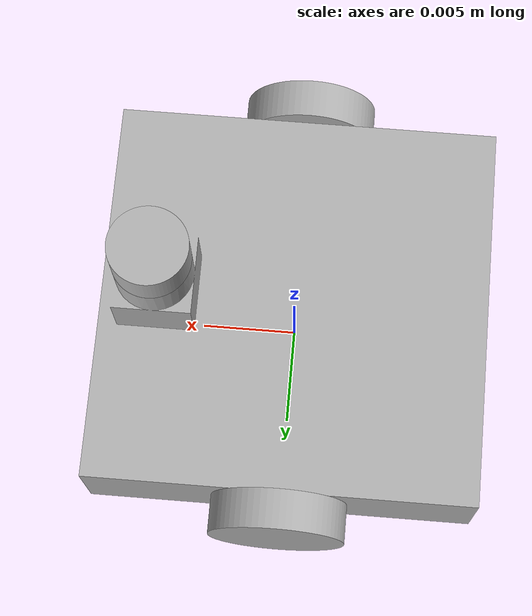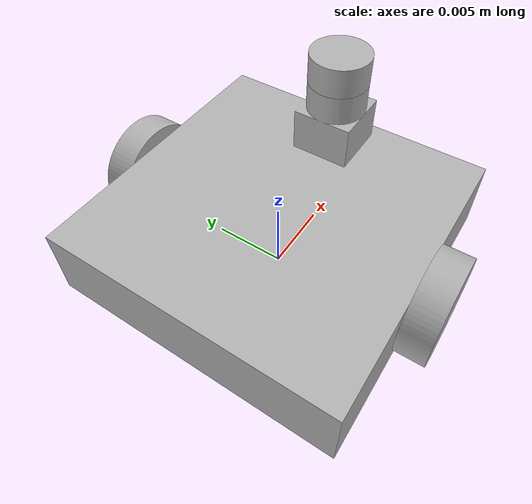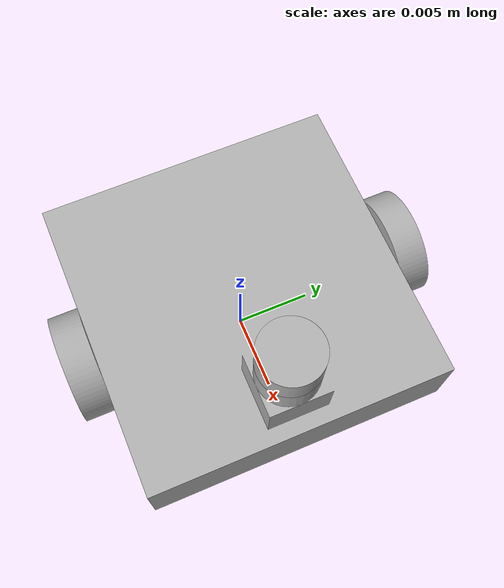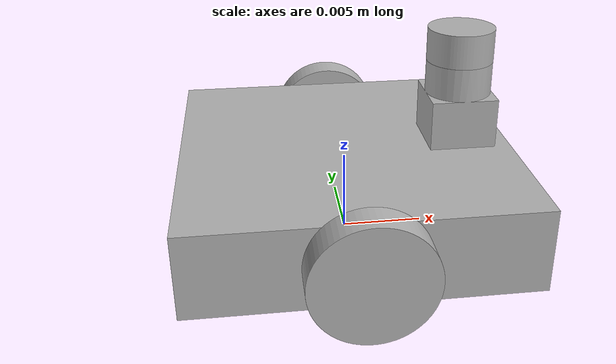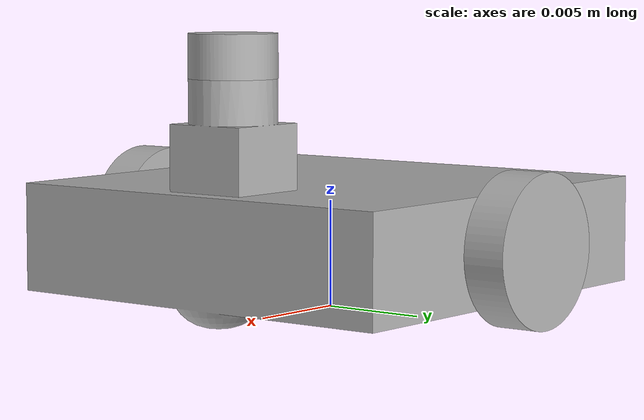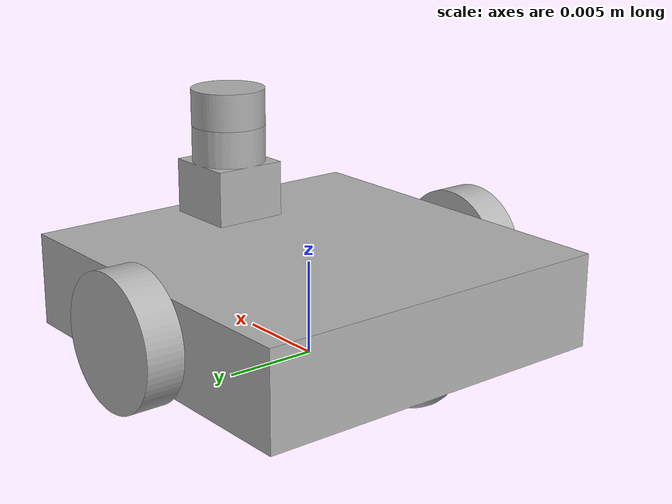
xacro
<?xml version="1.0" ?>
<robot name="trial" xmlns:xacro="http://www.ros.org/wiki/xacro">

<xacro:include filename="$(find trial_description)/urdf/materials.xacro" />
<xacro:include filename="$(find trial_description)/urdf/trial.trans" />
<xacro:include filename="$(find trial_description)/urdf/trial.gazebo" />
<link name="base_link">
  <inertial>
    <origin rpy="0 0 0" xyz="0.00024515429005832244 0.0 0.003649472912835996"/>
    <mass value="0.002213483451648013"/>
    <inertia ixx="0.0" ixy="0.0" ixz="-0.0" iyy="0.0" iyz="0.0" izz="0.0"/>
  </inertial>
  <visual>
    <origin rpy="0 0 0" xyz="0 0 0"/>
    <geometry>
      <mesh filename="package://trial_description/meshes/base_link.stl" scale="0.001 0.001 0.001"/>
    </geometry>
    <material name="silver"/>
  </visual>
  <collision>
    <origin rpy="0 0 0" xyz="0 0 0"/>
    <geometry>
      <mesh filename="package://trial_description/meshes/base_link.stl" scale="0.001 0.001 0.001"/>
    </geometry>
  </collision>
</link>

<link name="left_wheel_1">
  <inertial>
    <origin rpy="0 0 0" xyz="3.6598869835286766e-13 0.0010000000000000009 -8.673617379884035e-19"/>
    <mass value="7.158119226910766e-05"/>
    <inertia ixx="0.0" ixy="0.0" ixz="-0.0" iyy="0.0" iyz="0.0" izz="0.0"/>
  </inertial>
  <visual>
    <origin rpy="0 0 0" xyz="-0.0 -0.01 -0.0035"/>
    <geometry>
      <mesh filename="package://trial_description/meshes/left_wheel_1.stl" scale="0.001 0.001 0.001"/>
    </geometry>
    <material name="silver"/>
  </visual>
  <collision>
    <origin rpy="0 0 0" xyz="-0.0 -0.01 -0.0035"/>
    <geometry>
      <mesh filename="package://trial_description/meshes/left_wheel_1.stl" scale="0.001 0.001 0.001"/>
    </geometry>
  </collision>
</link>

<link name="right_wheel_1">
  <inertial>
    <origin rpy="0 0 0" xyz="3.6598869835286766e-13 -0.0010000000000000009 -8.673617379884035e-19"/>
    <mass value="7.158119226910766e-05"/>
    <inertia ixx="0.0" ixy="0.0" ixz="-0.0" iyy="0.0" iyz="-0.0" izz="0.0"/>
  </inertial>
  <visual>
    <origin rpy="0 0 0" xyz="-0.0 0.01 -0.0035"/>
    <geometry>
      <mesh filename="package://trial_description/meshes/right_wheel_1.stl" scale="0.001 0.001 0.001"/>
    </geometry>
    <material name="silver"/>
  </visual>
  <collision>
    <origin rpy="0 0 0" xyz="-0.0 0.01 -0.0035"/>
    <geometry>
      <mesh filename="package://trial_description/meshes/right_wheel_1.stl" scale="0.001 0.001 0.001"/>
    </geometry>
  </collision>
</link>

<link name="lidar_1">
  <inertial>
    <origin rpy="0 0 0" xyz="1.040989933143166e-10 3.4511225983891793e-19 0.0010000000000000026"/>
    <mass value="3.468318392927219e-05"/>
    <inertia ixx="0.0" ixy="0.0" ixz="0.0" iyy="0.0" iyz="-0.0" izz="0.0"/>
  </inertial>
  <visual>
    <origin rpy="0 0 0" xyz="-0.007 -0.0 -0.011"/>
    <geometry>
      <mesh filename="package://trial_description/meshes/lidar_1.stl" scale="0.001 0.001 0.001"/>
    </geometry>
    <material name="silver"/>
  </visual>
  <collision>
    <origin rpy="0 0 0" xyz="-0.007 -0.0 -0.011"/>
    <geometry>
      <mesh filename="package://trial_description/meshes/lidar_1.stl" scale="0.001 0.001 0.001"/>
    </geometry>
  </collision>
</link>

<joint name="Rev1" type="continuous">
  <origin rpy="0 0 0" xyz="0.0 0.01 0.0035"/>
  <parent link="base_link"/>
  <child link="left_wheel_1"/>
  <axis xyz="0.0 1.0 0.0"/>
</joint>

<joint name="Rev2" type="continuous">
  <origin rpy="0 0 0" xyz="0.0 -0.01 0.0035"/>
  <parent link="base_link"/>
  <child link="right_wheel_1"/>
  <axis xyz="0.0 -1.0 0.0"/>
</joint>

<joint name="Rigid3" type="fixed">
  <origin rpy="0 0 0" xyz="0.007 0.0 0.011"/>
  <parent link="base_link"/>
  <child link="lidar_1"/>
</joint>

</robot>

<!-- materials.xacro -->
<robot name="trial" xmlns:xacro="http://www.ros.org/wiki/xacro" >

<material name="silver">
  <color rgba="0.700 0.700 0.700 1.000"/>
</material>

</robot>

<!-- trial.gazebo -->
<robot name="trial" xmlns:xacro="http://www.ros.org/wiki/xacro" >

<xacro:property name="body_color" value="Gazebo/Silver" />

<gazebo>
  <plugin filename="libgazebo_ros_control.so" name="control"/>
</gazebo>
<gazebo reference="base_link">
  <material>${body_color}</material>
  <mu1>0.2</mu1>
  <mu2>0.2</mu2>
  <selfCollide>true</selfCollide>
  <gravity>true</gravity>
</gazebo>

<gazebo reference="left_wheel_1">
  <material>${body_color}</material>
  <mu1>0.2</mu1>
  <mu2>0.2</mu2>
  <selfCollide>true</selfCollide>
</gazebo>

<gazebo reference="right_wheel_1">
  <material>${body_color}</material>
  <mu1>0.2</mu1>
  <mu2>0.2</mu2>
  <selfCollide>true</selfCollide>
</gazebo>

<gazebo reference="lidar_1">
  <material>${body_color}</material>
  <mu1>0.2</mu1>
  <mu2>0.2</mu2>
  <selfCollide>true</selfCollide>
</gazebo>

</robot>
